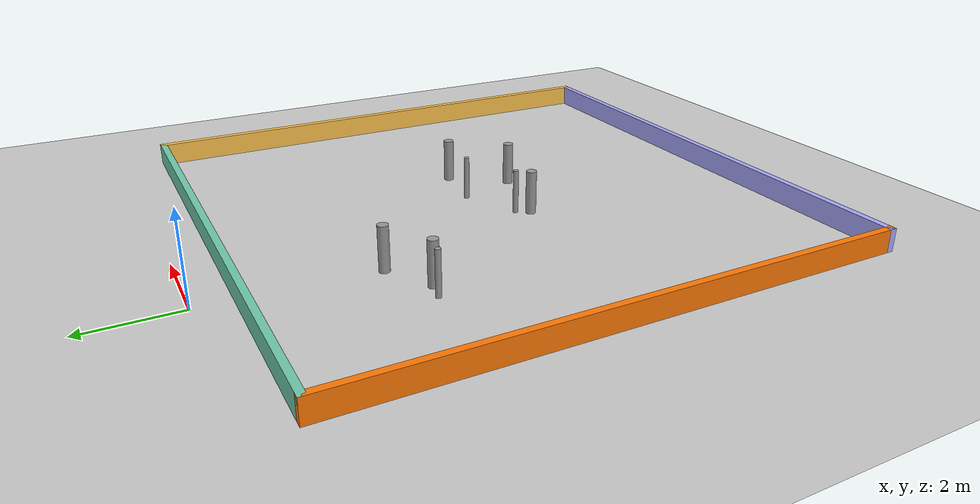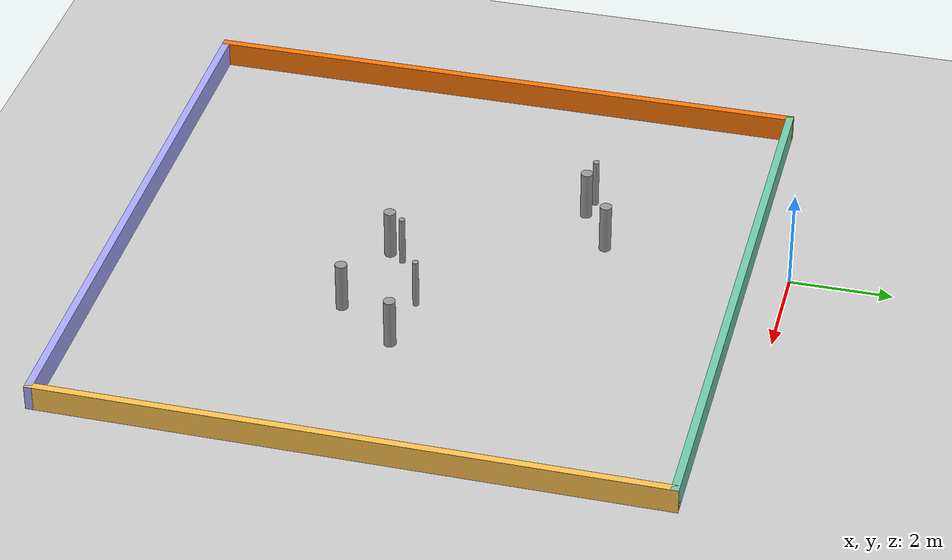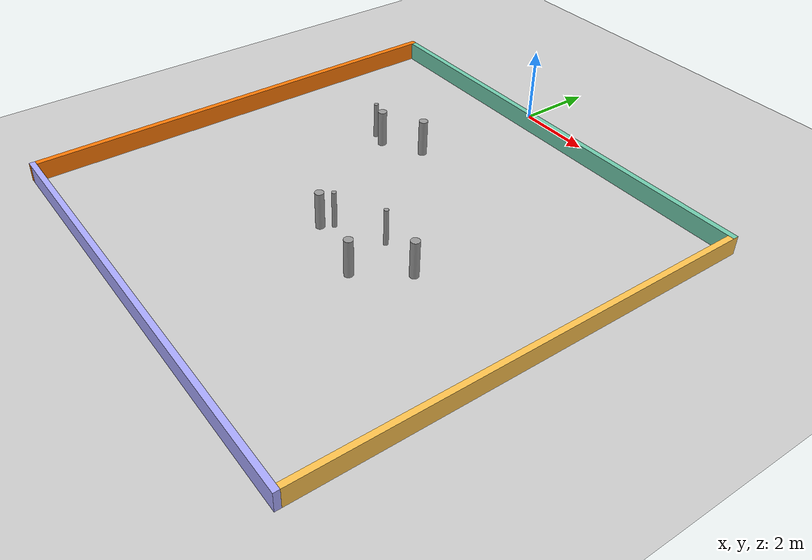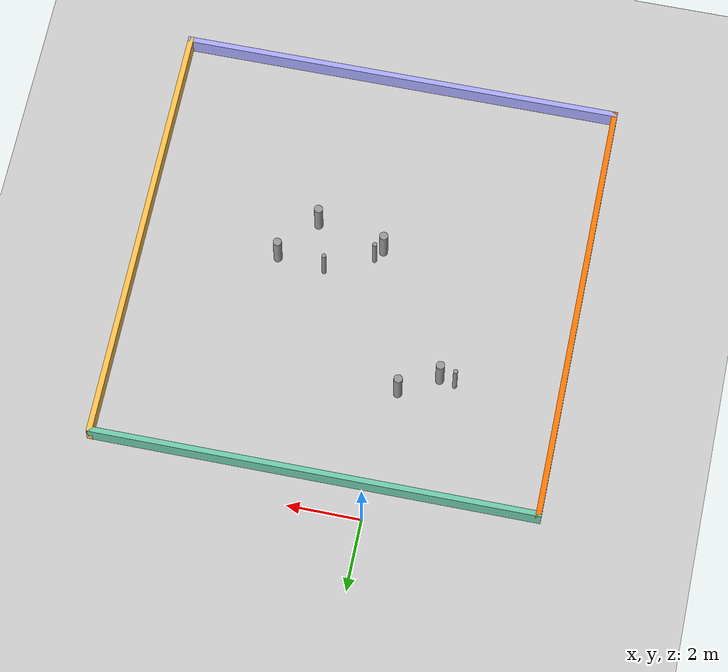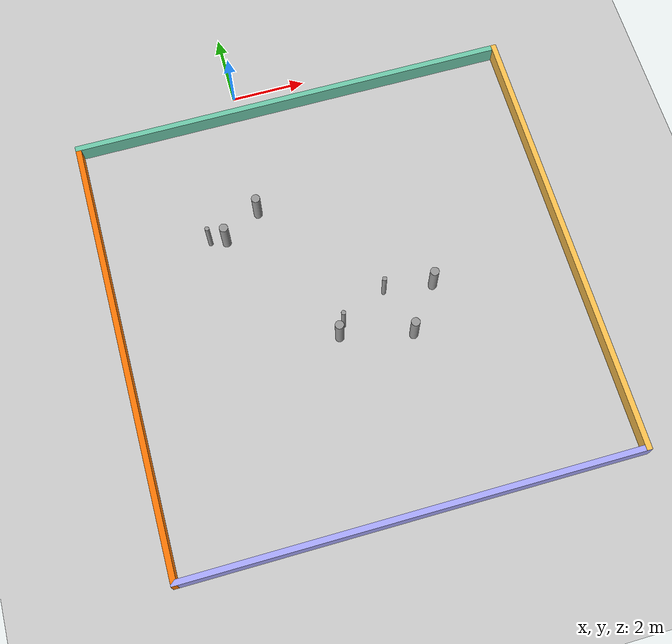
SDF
<sdf version="1.6">
 <world name="default">
  <light name="sun" type="directional">
   <cast_shadows>false</cast_shadows>
   <pose>0 0 10 0 -0 0</pose>
   <diffuse>0.8 0.8 0.8 1</diffuse>
   <specular>0.1 0.1 0.1 1</specular>
   <attenuation>
    <range>1000</range>
    <constant>0.9</constant>
    <linear>0.01</linear>
    <quadratic>0.001</quadratic>
   </attenuation>
   <direction>-0.5 0.5 -1</direction>
  </light>
  <model name="ground_plane">
   <static>1</static>
   <link name="link">
    <collision name="collision">
     <geometry><plane><normal>0 0 1</normal><size>100 100</size></plane></geometry>
     <surface><friction><ode><mu>100</mu><mu2>50</mu2></ode></friction></surface>
    </collision>
    <visual name="visual">
     <cast_shadows>0</cast_shadows>
     <geometry><plane><normal>0 0 1</normal><size>100 100</size></plane></geometry>
     <material>
      <script><uri>file://media/materials/scripts/gazebo.material</uri><name>Gazebo/Grey</name></script>
     </material>
    </visual>
   </link>
  </model>
  <gravity>0 0 -9.8</gravity>
  <magnetic_field>6e-06 2.3e-05 -4.2e-05</magnetic_field>
  <atmosphere type="adiabatic"/>
  <physics name="default_physics" default="0" type="ode">
   <max_step_size>0.001</max_step_size>
   <real_time_factor>1</real_time_factor>
   <real_time_update_rate>1000</real_time_update_rate>
  </physics>
  <scene><ambient>0.4 0.4 0.4 1</ambient><background>0.7 0.7 0.7 1</background><shadows>False</shadows></scene>
  <spherical_coordinates>
   <surface_model>EARTH_WGS84</surface_model>
   <latitude_deg>0</latitude_deg>
   <longitude_deg>0</longitude_deg>
   <elevation>0</elevation>
   <heading_deg>0</heading_deg>
  </spherical_coordinates>
  <model name="Untitled">
   <pose>1.455 -6.7295 0 0 -0 0</pose>
   <link name="Wall_0">
    <collision name="Wall_0_Collision">
     <geometry><box><size>12 0.15 0.5</size></box></geometry>
     <pose>0 0 0.5 0 -0 0</pose>
    </collision>
    <visual name="Wall_0_Visual">
     <pose>0 0 0.5 0 -0 0</pose>
     <geometry><box><size>12 0.15 0.5</size></box></geometry>
     <material>
      <script><uri>file://media/materials/scripts/gazebo.material</uri><name>Gazebo/Grey</name></script>
      <ambient>0.435294 0.796078 0.67451 1</ambient>
     </material>
    </visual>
    <pose>0 5.9395 0 0 -0 0</pose>
   </link>
   <link name="Wall_1">
    <collision name="Wall_1_Collision">
     <geometry><box><size>12.029 0.15 0.5</size></box></geometry>
     <pose>0 0 0.5 0 -0 0</pose>
    </collision>
    <visual name="Wall_1_Visual">
     <pose>0 0 0.5 0 -0 0</pose>
     <geometry><box><size>12.029 0.15 0.5</size></box></geometry>
     <material>
      <script><uri>file://media/materials/scripts/gazebo.material</uri><name>Gazebo/Grey</name></script>
      <ambient>1 0.764706 0.305882 1</ambient>
     </material>
    </visual>
    <pose>5.925 0 0 0 0 -1.5708</pose>
   </link>
   <link name="Wall_2">
    <collision name="Wall_2_Collision">
     <geometry><box><size>12 0.15 0.5</size></box></geometry>
     <pose>0 0 0.5 0 -0 0</pose>
    </collision>
    <visual name="Wall_2_Visual">
     <pose>0 0 0.5 0 -0 0</pose>
     <geometry><box><size>12 0.15 0.5</size></box></geometry>
     <material>
      <script><uri>file://media/materials/scripts/gazebo.material</uri><name>Gazebo/Grey</name></script>
      <ambient>0.666667 0.666667 1 1</ambient>
     </material>
    </visual>
    <pose>0 -5.9395 0 0 -0 3.14159</pose>
   </link>
   <link name="Wall_3">
    <collision name="Wall_3_Collision">
     <geometry><box><size>12.029 0.15 0.5</size></box></geometry>
     <pose>0 0 0.5 0 -0 0</pose>
    </collision>
    <visual name="Wall_3_Visual">
     <pose>0 0 0.5 0 -0 0</pose>
     <geometry><box><size>12.029 0.15 0.5</size></box></geometry>
     <material>
      <script><uri>file://media/materials/scripts/gazebo.material</uri><name>Gazebo/Grey</name></script>
      <ambient>0.996078 0.47451 0.0196078 1</ambient>
     </material>
    </visual>
    <pose>-5.925 0 0 0 -0 1.5708</pose>
   </link>
   <static>1</static>
  </model>
  <model name="unit_cylinder_0_0">
   <pose>-1.65396 -4.171 0.499995 0 0 -0.000314</pose>
   <link name="link">
    <inertial>
     <mass>1</mass>
     <inertia><ixx>0.145833</ixx><ixy>0</ixy><ixz>0</ixz><iyy>0.145833</iyy><iyz>0</iyz><izz>0.125</izz></inertia>
    </inertial>
    <collision name="collision">
     <geometry><cylinder><radius>0.0605411</radius><length>1</length></cylinder></geometry>
    </collision>
    <visual name="visual">
     <geometry><cylinder><radius>0.0605411</radius><length>1</length></cylinder></geometry>
     <material>
      <ambient>1 1 1 1</ambient>
      <script><name>Gazebo/Grey</name><uri>file://media/materials/scripts/gazebo.material</uri></script>
     </material>
    </visual>
   </link>
  </model>
  <model name="unit_cylinder_0_0_clone">
   <pose>-0.222743 -3.66959 0.49999 0 0 -1e-05</pose>
   <link name="link">
    <inertial>
     <mass>1</mass>
     <inertia><ixx>0.145833</ixx><ixy>0</ixy><ixz>0</ixz><iyy>0.145833</iyy><iyz>0</iyz><izz>0.125</izz></inertia>
    </inertial>
    <collision name="collision">
     <geometry><cylinder><radius>0.116277</radius><length>1</length></cylinder></geometry>
    </collision>
    <visual name="visual">
     <geometry><cylinder><radius>0.116277</radius><length>1</length></cylinder></geometry>
     <material>
      <ambient>1 1 1 1</ambient>
      <script><name>Gazebo/Grey</name><uri>file://media/materials/scripts/gazebo.material</uri></script>
     </material>
    </visual>
   </link>
  </model>
  <model name="unit_cylinder_0_0_clone_0">
   <pose>0.954943 -7.66588 0.499991 0 0 -1e-05</pose>
   <link name="link">
    <inertial>
     <mass>1</mass>
     <inertia><ixx>0.145833</ixx><ixy>0</ixy><ixz>0</ixz><iyy>0.145833</iyy><iyz>0</iyz><izz>0.125</izz></inertia>
    </inertial>
    <collision name="collision">
     <geometry><cylinder><radius>0.116277</radius><length>1</length></cylinder></geometry>
    </collision>
    <visual name="visual">
     <geometry><cylinder><radius>0.116277</radius><length>1</length></cylinder></geometry>
     <material>
      <ambient>1 1 1 1</ambient>
      <script><name>Gazebo/Grey</name><uri>file://media/materials/scripts/gazebo.material</uri></script>
     </material>
    </visual>
   </link>
  </model>
  <model name="unit_cylinder_0_0_clone_1">
   <pose>3.69901 -6.92983 0.499991 0 0 -9e-06</pose>
   <link name="link">
    <inertial>
     <mass>1</mass>
     <inertia><ixx>0.145833</ixx><ixy>0</ixy><ixz>0</ixz><iyy>0.145833</iyy><iyz>0</iyz><izz>0.125</izz></inertia>
    </inertial>
    <collision name="collision">
     <geometry><cylinder><radius>0.116277</radius><length>1</length></cylinder></geometry>
    </collision>
    <visual name="visual">
     <geometry><cylinder><radius>0.116277</radius><length>1</length></cylinder></geometry>
     <material>
      <ambient>1 1 1 1</ambient>
      <script><name>Gazebo/Grey</name><uri>file://media/materials/scripts/gazebo.material</uri></script>
     </material>
    </visual>
   </link>
  </model>
  <model name="unit_cylinder_0_0_clone_2">
   <pose>2.82562 -8.10985 0.499991 0 0 -8e-06</pose>
   <link name="link">
    <inertial>
     <mass>1</mass>
     <inertia><ixx>0.145833</ixx><ixy>0</ixy><ixz>0</ixz><iyy>0.145833</iyy><iyz>0</iyz><izz>0.125</izz></inertia>
    </inertial>
    <collision name="collision">
     <geometry><cylinder><radius>0.116277</radius><length>1</length></cylinder></geometry>
    </collision>
    <visual name="visual">
     <geometry><cylinder><radius>0.116277</radius><length>1</length></cylinder></geometry>
     <material>
      <ambient>1 1 1 1</ambient>
      <script><name>Gazebo/Grey</name><uri>file://media/materials/scripts/gazebo.material</uri></script>
     </material>
    </visual>
   </link>
  </model>
  <model name="unit_cylinder_0_0_clone_3">
   <pose>-1.2329 -4.26528 0.499991 0 0 -7e-06</pose>
   <link name="link">
    <inertial>
     <mass>1</mass>
     <inertia><ixx>0.145833</ixx><ixy>0</ixy><ixz>0</ixz><iyy>0.145833</iyy><iyz>0</iyz><izz>0.125</izz></inertia>
    </inertial>
    <collision name="collision">
     <geometry><cylinder><radius>0.116277</radius><length>1</length></cylinder></geometry>
    </collision>
    <visual name="visual">
     <geometry><cylinder><radius>0.116277</radius><length>1</length></cylinder></geometry>
     <material>
      <ambient>1 1 1 1</ambient>
      <script><name>Gazebo/Grey</name><uri>file://media/materials/scripts/gazebo.material</uri></script>
     </material>
    </visual>
   </link>
  </model>
  <model name="unit_cylinder_0_0_clone_4">
   <pose>1.14017 -7.37583 0.499997 0 0 -0.000114</pose>
   <link name="link">
    <inertial>
     <mass>1</mass>
     <inertia><ixx>0.145833</ixx><ixy>0</ixy><ixz>0</ixz><iyy>0.145833</iyy><iyz>0</iyz><izz>0.125</izz></inertia>
    </inertial>
    <collision name="collision">
     <geometry><cylinder><radius>0.0605414</radius><length>1</length></cylinder></geometry>
    </collision>
    <visual name="visual">
     <geometry><cylinder><radius>0.0605414</radius><length>1</length></cylinder></geometry>
     <material>
      <ambient>1 1 1 1</ambient>
      <script><name>Gazebo/Grey</name><uri>file://media/materials/scripts/gazebo.material</uri></script>
     </material>
    </visual>
   </link>
  </model>
  <model name="unit_cylinder_0_0_clone_5">
   <pose>2.40392 -6.77398 0.499991 0 0 -9e-05</pose>
   <link name="link">
    <inertial>
     <mass>1</mass>
     <inertia><ixx>0.145833</ixx><ixy>0</ixy><ixz>0</ixz><iyy>0.145833</iyy><iyz>0</iyz><izz>0.125</izz></inertia>
    </inertial>
    <collision name="collision">
     <geometry><cylinder><radius>0.0605414</radius><length>1</length></cylinder></geometry>
    </collision>
    <visual name="visual">
     <geometry><cylinder><radius>0.0605414</radius><length>1</length></cylinder></geometry>
     <material>
      <ambient>1 1 1 1</ambient>
      <script><name>Gazebo/Grey</name><uri>file://media/materials/scripts/gazebo.material</uri></script>
     </material>
    </visual>
   </link>
  </model>
 </world>
</sdf>
